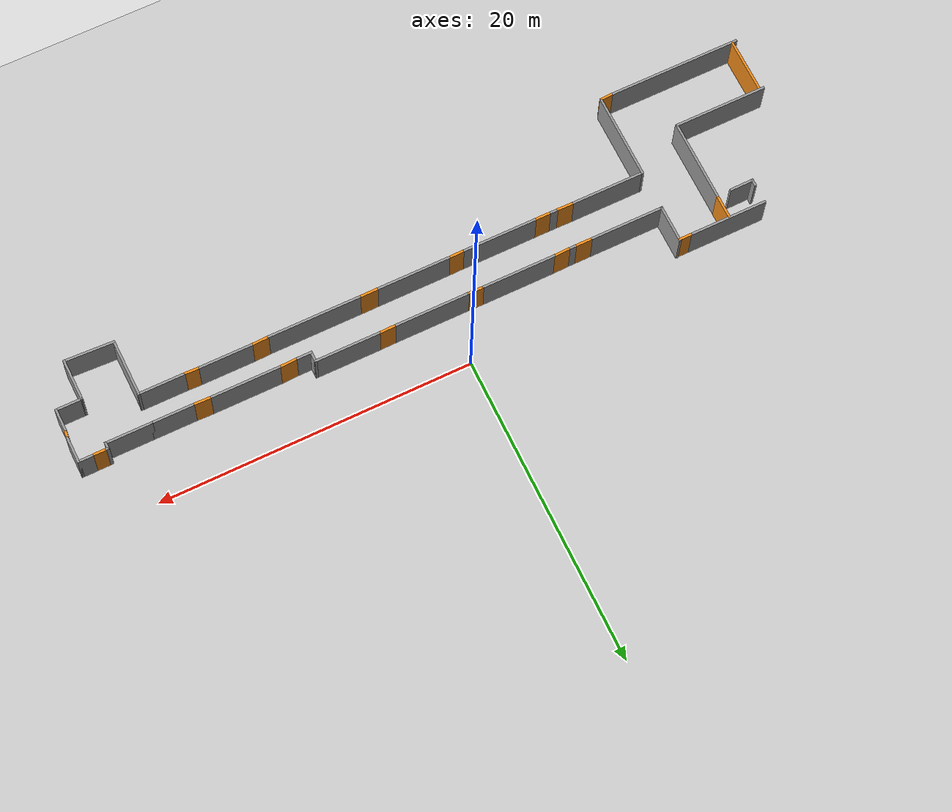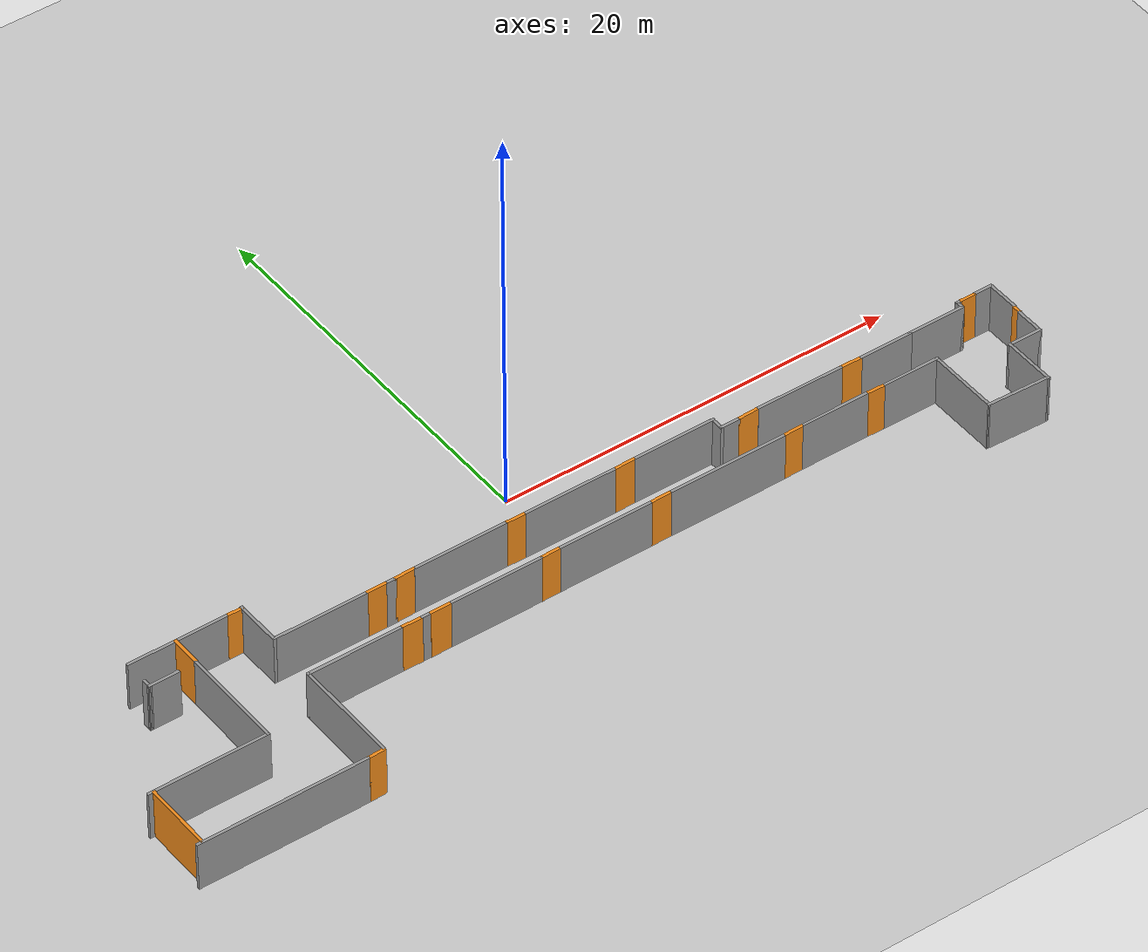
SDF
<sdf version='1.7'>
  <world name='default'>
    <light name='sun' type='directional'>
      <cast_shadows>1</cast_shadows>
      <pose>0 0 10 0 -0 0</pose>
      <diffuse>0.8 0.8 0.8 1</diffuse>
      <specular>0.2 0.2 0.2 1</specular>
      <attenuation>
        <range>1000</range>
        <constant>0.9</constant>
        <linear>0.01</linear>
        <quadratic>0.001</quadratic>
      </attenuation>
      <direction>-0.5 0.1 -0.9</direction>
      <spot>
        <inner_angle>0</inner_angle>
        <outer_angle>0</outer_angle>
        <falloff>0</falloff>
      </spot>
    </light>
    <model name='ground_plane'>
      <static>1</static>
      <link name='link'>
        <collision name='collision'>
          <geometry>
            <plane>
              <normal>0 0 1</normal>
              <size>100 100</size>
            </plane>
          </geometry>
          <surface>
            <friction>
              <ode>
                <mu>100</mu>
                <mu2>50</mu2>
              </ode>
              <torsional>
                <ode/>
              </torsional>
            </friction>
            <contact>
              <ode/>
            </contact>
            <bounce/>
          </surface>
          <max_contacts>10</max_contacts>
        </collision>
        <visual name='visual'>
          <cast_shadows>0</cast_shadows>
          <geometry>
            <plane>
              <normal>0 0 1</normal>
              <size>100 100</size>
            </plane>
          </geometry>
          <material>
            <script>
              <uri>file://media/materials/scripts/gazebo.material</uri>
              <name>Gazebo/Grey</name>
            </script>
          </material>
        </visual>
        <self_collide>0</self_collide>
        <enable_wind>0</enable_wind>
        <kinematic>0</kinematic>
      </link>
    </model>
    <gravity>0 0 -9.8</gravity>
    <magnetic_field>6e-06 2.3e-05 -4.2e-05</magnetic_field>
    <atmosphere type='adiabatic'/>
    <physics type='ode'>
      <max_step_size>0.001</max_step_size>
      <real_time_factor>1</real_time_factor>
      <real_time_update_rate>1000</real_time_update_rate>
    </physics>
    <scene>
      <ambient>0.4 0.4 0.4 1</ambient>
      <background>0.7 0.7 0.7 1</background>
      <shadows>1</shadows>
    </scene>
    <audio>
      <device>default</device>
    </audio>
    <wind/>
    <spherical_coordinates>
      <surface_model>EARTH_WGS84</surface_model>
      <latitude_deg>0</latitude_deg>
      <longitude_deg>0</longitude_deg>
      <elevation>0</elevation>
      <heading_deg>0</heading_deg>
    </spherical_coordinates>

    <include>
      <name>mundo_definitivo_piso2</name>
      <uri>model://mundo_definitivo_piso2</uri>
      <pose>0 0 0 0 0 0</pose>
    </include>

    <gui fullscreen='0'>
      <camera name='user_camera'>
        <pose>0 -14.7 50 0 1.4 1.5708</pose>
        <view_controller>orbit</view_controller>
        <projection_type>perspective</projection_type>
      </camera>
    </gui>
  </world>
</sdf>

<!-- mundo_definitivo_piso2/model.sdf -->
<sdf version='1.7'>
  <model name='mundo_definitivo_piso2'>
    <pose>0.752962 -0.165006 0 0 -0 0</pose>
    <link name='Wall_100'>
      <collision name='Wall_100_Collision'>
        <geometry>
          <box>
            <size>0.5 0.15 2.5</size>
          </box>
        </geometry>
        <pose>0 0 1.25 0 -0 0</pose>
      </collision>
      <visual name='Wall_100_Visual'>
        <pose>0 0 1.25 0 -0 0</pose>
        <geometry>
          <box>
            <size>0.5 0.15 2.5</size>
          </box>
        </geometry>
        <material>
          <script>
            <uri>file://media/materials/scripts/gazebo.material</uri>
            <name>Gazebo/Grey</name>
          </script>
          <ambient>1 1 1 1</ambient>
        </material>
        <meta>
          <layer>0</layer>
        </meta>
      </visual>
      <pose>-8.23448 -5.77581 0 0 -0 0</pose>
    </link>
    <link name='Wall_102'>
      <collision name='Wall_102_Collision'>
        <geometry>
          <box>
            <size>4.75 0.15 2.5</size>
          </box>
        </geometry>
        <pose>0 0 1.25 0 -0 0</pose>
      </collision>
      <visual name='Wall_102_Visual'>
        <pose>0 0 1.25 0 -0 0</pose>
        <geometry>
          <box>
            <size>4.75 0.15 2.5</size>
          </box>
        </geometry>
        <material>
          <script>
            <uri>file://media/materials/scripts/gazebo.material</uri>
            <name>Gazebo/Grey</name>
          </script>
          <ambient>1 1 1 1</ambient>
        </material>
        <meta>
          <layer>0</layer>
        </meta>
      </visual>
      <pose>-11.7864 -3.22073 0 0 -0 3.14159</pose>
    </link>
    <link name='Wall_104'>
      <collision name='Wall_104_Collision'>
        <geometry>
          <box>
            <size>2.46963 0.15 2.5</size>
          </box>
        </geometry>
        <pose>0 0 1.25 0 -0 0</pose>
      </collision>
      <visual name='Wall_104_Visual'>
        <pose>0 0 1.25 0 -0 0</pose>
        <geometry>
          <box>
            <size>2.46963 0.15 2.5</size>
          </box>
        </geometry>
        <material>
          <script>
            <uri>file://media/materials/scripts/gazebo.material</uri>
            <name>Gazebo/Grey</name>
          </script>
          <ambient>1 1 1 1</ambient>
        </material>
        <meta>
          <layer>0</layer>
        </meta>
      </visual>
      <pose>-14.1016 -2.06094 0 0 -0 1.5708</pose>
    </link>
    <link name='Wall_106'>
      <collision name='Wall_106_Collision'>
        <geometry>
          <box>
            <size>0.5 0.15 2.5</size>
          </box>
        </geometry>
        <pose>0 0 1.25 0 -0 0</pose>
      </collision>
      <visual name='Wall_106_Visual'>
        <pose>0 0 1.25 0 -0 0</pose>
        <geometry>
          <box>
            <size>0.5 0.15 2.5</size>
          </box>
        </geometry>
        <material>
          <script>
            <uri>file://media/materials/scripts/gazebo.material</uri>
            <name>Gazebo/Grey</name>
          </script>
          <ambient>1 1 1 1</ambient>
        </material>
        <meta>
          <layer>0</layer>
        </meta>
      </visual>
      <pose>-8.21947 -3.22073 0 0 -0 3.14159</pose>
    </link>
    <link name='Wall_108'>
      <collision name='Wall_108_Collision'>
        <geometry>
          <box>
            <size>4.75 0.15 2.5</size>
          </box>
        </geometry>
        <pose>0 0 1.25 0 -0 0</pose>
      </collision>
      <visual name='Wall_108_Visual'>
        <pose>0 0 1.25 0 -0 0</pose>
        <geometry>
          <box>
            <size>4.75 0.15 2.5</size>
          </box>
        </geometry>
        <material>
          <script>
            <uri>file://media/materials/scripts/gazebo.material</uri>
            <name>Gazebo/Grey</name>
          </script>
          <ambient>1 1 1 1</ambient>
        </material>
        <meta>
          <layer>0</layer>
        </meta>
      </visual>
      <pose>-4.64944 -3.19032 0 0 -0 0</pose>
    </link>
    <link name='Wall_110'>
      <collision name='Wall_110_Collision'>
        <geometry>
          <box>
            <size>4.75 0.15 2.5</size>
          </box>
        </geometry>
        <pose>0 0 1.25 0 -0 0</pose>
      </collision>
      <visual name='Wall_110_Visual'>
        <pose>0 0 1.25 0 -0 0</pose>
        <geometry>
          <box>
            <size>4.75 0.15 2.5</size>
          </box>
        </geometry>
        <material>
          <script>
            <uri>file://media/materials/scripts/gazebo.material</uri>
            <name>Gazebo/Grey</name>
          </script>
          <ambient>1 1 1 1</ambient>
        </material>
        <meta>
          <layer>0</layer>
        </meta>
      </visual>
      <pose>-4.66465 -5.77581 0 0 -0 0</pose>
    </link>
    <link name='Wall_112'>
      <collision name='Wall_112_Collision'>
        <geometry>
          <box>
            <size>4.75 0.15 2.5</size>
          </box>
        </geometry>
        <pose>0 0 1.25 0 -0 0</pose>
      </collision>
      <visual name='Wall_112_Visual'>
        <pose>0 0 1.25 0 -0 0</pose>
        <geometry>
          <box>
            <size>4.75 0.15 2.5</size>
          </box>
        </geometry>
        <material>
          <script>
            <uri>file://media/materials/scripts/gazebo.material</uri>
            <name>Gazebo/Grey</name>
          </script>
          <ambient>1 1 1 1</ambient>
        </material>
        <meta>
          <layer>0</layer>
        </meta>
      </visual>
      <pose>0.99301 -3.20553 0 0 -0 0</pose>
    </link>
    <link name='Wall_114'>
      <collision name='Wall_114_Collision'>
        <geometry>
          <box>
            <size>4.75 0.15 2.5</size>
          </box>
        </geometry>
        <pose>0 0 1.25 0 -0 0</pose>
      </collision>
      <visual name='Wall_114_Visual'>
        <pose>0 0 1.25 0 -0 0</pose>
        <geometry>
          <box>
            <size>4.75 0.15 2.5</size>
          </box>
        </geometry>
        <material>
          <script>
            <uri>file://media/materials/scripts/gazebo.material</uri>
            <name>Gazebo/Grey</name>
          </script>
          <ambient>1 1 1 1</ambient>
        </material>
        <meta>
          <layer>0</layer>
        </meta>
      </visual>
      <pose>0.977802 -5.7606 0 0 -0 0</pose>
    </link>
    <link name='Wall_116'>
      <collision name='Wall_116_Collision'>
        <geometry>
          <box>
            <size>4.25 0.15 2.5</size>
          </box>
        </geometry>
        <pose>0 0 1.25 0 -0 0</pose>
      </collision>
      <visual name='Wall_116_Visual'>
        <pose>0 0 1.25 0 -0 0</pose>
        <geometry>
          <box>
            <size>4.25 0.15 2.5</size>
          </box>
        </geometry>
        <material>
          <script>
            <uri>file://media/materials/scripts/gazebo.material</uri>
            <name>Gazebo/Grey</name>
          </script>
          <ambient>1 1 1 1</ambient>
        </material>
        <meta>
          <layer>0</layer>
        </meta>
      </visual>
      <pose>6.4615 -3.19032 0 0 -0 0</pose>
    </link>
    <link name='Wall_117'>
      <collision name='Wall_117_Collision'>
        <geometry>
          <box>
            <size>0.750193 0.15 2.5</size>
          </box>
        </geometry>
        <pose>0 0 1.25 0 -0 0</pose>
      </collision>
      <visual name='Wall_117_Visual'>
        <pose>0 0 1.25 0 -0 0</pose>
        <geometry>
          <box>
            <size>0.750193 0.15 2.5</size>
          </box>
        </geometry>
        <material>
          <script>
            <uri>file://media/materials/scripts/gazebo.material</uri>
            <name>Gazebo/Grey</name>
          </script>
          <ambient>1 1 1 1</ambient>
        </material>
        <meta>
          <layer>0</layer>
        </meta>
      </visual>
      <pose>8.49629 -3.49032 0 0 -0 -1.5708</pose>
    </link>
    <link name='Wall_118'>
      <collision name='Wall_118_Collision'>
        <geometry>
          <box>
            <size>1 0.15 2.5</size>
          </box>
        </geometry>
        <pose>0 0 1.25 0 -0 0</pose>
      </collision>
      <visual name='Wall_118_Visual'>
        <pose>0 0 1.25 0 -0 0</pose>
        <geometry>
          <box>
            <size>1 0.15 2.5</size>
          </box>
        </geometry>
        <material>
          <script>
            <uri>file://media/materials/scripts/gazebo.material</uri>
            <name>Gazebo/Grey</name>
          </script>
          <ambient>1 1 1 1</ambient>
        </material>
        <meta>
          <layer>0</layer>
        </meta>
      </visual>
      <pose>8.9365 -3.79032 0 0 -0 0</pose>
    </link>
    <link name='Wall_120'>
      <collision name='Wall_120_Collision'>
        <geometry>
          <box>
            <size>4.5 0.15 2.5</size>
          </box>
        </geometry>
        <pose>0 0 1.25 0 -0 0</pose>
      </collision>
      <visual name='Wall_120_Visual'>
        <pose>0 0 1.25 0 -0 0</pose>
        <geometry>
          <box>
            <size>4.5 0.15 2.5</size>
          </box>
        </geometry>
        <material>
          <script>
            <uri>file://media/materials/scripts/gazebo.material</uri>
            <name>Gazebo/Grey</name>
          </script>
          <ambient>1 1 1 1</ambient>
        </material>
        <meta>
          <layer>0</layer>
        </meta>
      </visual>
      <pose>12.7004 -3.75304 0 0 -0 0</pose>
    </link>
    <link name='Wall_124'>
      <collision name='Wall_124_Collision'>
        <geometry>
          <box>
            <size>3 0.15 2.5</size>
          </box>
        </geometry>
        <pose>0 0 1.25 0 -0 0</pose>
      </collision>
      <visual name='Wall_124_Visual'>
        <pose>0 0 1.25 0 -0 0</pose>
        <geometry>
          <box>
            <size>3 0.15 2.5</size>
          </box>
        </geometry>
        <material>
          <script>
            <uri>file://media/materials/scripts/gazebo.material</uri>
            <name>Gazebo/Grey</name>
          </script>
          <ambient>1 1 1 1</ambient>
        </material>
        <meta>
          <layer>0</layer>
        </meta>
      </visual>
      <pose>17.1388 -5.74539 0 0 -0 3.14159</pose>
    </link>
    <link name='Wall_126'>
      <collision name='Wall_126_Collision'>
        <geometry>
          <box>
            <size>3.5 0.15 2.5</size>
          </box>
        </geometry>
        <pose>0 0 1.25 0 -0 0</pose>
      </collision>
      <visual name='Wall_126_Visual'>
        <pose>0 0 1.25 0 -0 0</pose>
        <geometry>
          <box>
            <size>3.5 0.15 2.5</size>
          </box>
        </geometry>
        <material>
          <script>
            <uri>file://media/materials/scripts/gazebo.material</uri>
            <name>Gazebo/Grey</name>
          </script>
          <ambient>1 1 1 1</ambient>
        </material>
        <meta>
          <layer>0</layer>
        </meta>
      </visual>
      <pose>13.0768 -5.72041 0 0 -0 0</pose>
    </link>
    <link name='Wall_128'>
      <collision name='Wall_128_Collision'>
        <geometry>
          <box>
            <size>6 0.15 2.5</size>
          </box>
        </geometry>
        <pose>0 0 1.25 0 -0 0</pose>
      </collision>
      <visual name='Wall_128_Visual'>
        <pose>0 0 1.25 0 -0 0</pose>
        <geometry>
          <box>
            <size>6 0.15 2.5</size>
          </box>
        </geometry>
        <material>
          <script>
            <uri>file://media/materials/scripts/gazebo.material</uri>
            <name>Gazebo/Grey</name>
          </script>
          <ambient>1 1 1 1</ambient>
        </material>
        <meta>
          <layer>0</layer>
        </meta>
      </visual>
      <pose>7.38832 -5.75453 0 0 -0 0</pose>
    </link>
    <link name='Wall_130'>
      <collision name='Wall_130_Collision'>
        <geometry>
          <box>
            <size>3.75 0.15 2.5</size>
          </box>
        </geometry>
        <pose>0 0 1.25 0 -0 0</pose>
      </collision>
      <visual name='Wall_130_Visual'>
        <pose>0 0 1.25 0 -0 0</pose>
        <geometry>
          <box>
            <size>3.75 0.15 2.5</size>
          </box>
        </geometry>
        <material>
          <script>
            <uri>file://media/materials/scripts/gazebo.material</uri>
            <name>Gazebo/Grey</name>
          </script>
          <ambient>1 1 1 1</ambient>
        </material>
        <meta>
          <layer>0</layer>
        </meta>
      </visual>
      <pose>18.5523 -7.54539 0 0 -0 -1.5708</pose>
    </link>
    <link name='Wall_136'>
      <collision name='Wall_136_Collision'>
        <geometry>
          <box>
            <size>2.75 0.15 2.5</size>
          </box>
        </geometry>
        <pose>0 0 1.25 0 -0 0</pose>
      </collision>
      <visual name='Wall_136_Visual'>
        <pose>0 0 1.25 0 -0 0</pose>
        <geometry>
          <box>
            <size>2.75 0.15 2.5</size>
          </box>
        </geometry>
        <material>
          <script>
            <uri>file://media/materials/scripts/gazebo.material</uri>
            <name>Gazebo/Grey</name>
          </script>
          <ambient>1 1 1 1</ambient>
        </material>
        <meta>
          <layer>0</layer>
        </meta>
      </visual>
      <pose>17.3064 -3.77961 0 0 -0 0</pose>
    </link>
    <link name='Wall_138'>
      <collision name='Wall_138_Collision'>
        <geometry>
          <box>
            <size>3 0.15 2.5</size>
          </box>
        </geometry>
        <pose>0 0 1.25 0 -0 0</pose>
      </collision>
      <visual name='Wall_138_Visual'>
        <pose>0 0 1.25 0 -0 0</pose>
        <geometry>
          <box>
            <size>3 0.15 2.5</size>
          </box>
        </geometry>
        <material>
          <script>
            <uri>file://media/materials/scripts/gazebo.material</uri>
            <name>Gazebo/Grey</name>
          </script>
          <ambient>1 1 1 1</ambient>
        </material>
        <meta>
          <layer>0</layer>
        </meta>
      </visual>
      <pose>20.0314 -3.77961 0 0 -0 0</pose>
    </link>
    <link name='Wall_139'>
      <collision name='Wall_139_Collision'>
        <geometry>
          <box>
            <size>0.5 0.15 2.5</size>
          </box>
        </geometry>
        <pose>0 0 1.25 0 -0 0</pose>
      </collision>
      <visual name='Wall_139_Visual'>
        <pose>0 0 1.25 0 -0 0</pose>
        <geometry>
          <box>
            <size>0.5 0.15 2.5</size>
          </box>
        </geometry>
        <material>
          <script>
            <uri>file://media/materials/scripts/gazebo.material</uri>
            <name>Gazebo/Grey</name>
          </script>
          <ambient>1 1 1 1</ambient>
        </material>
        <meta>
          <layer>0</layer>
        </meta>
      </visual>
      <pose>21.4564 -3.60461 0 0 -0 1.5708</pose>
    </link>
    <link name='Wall_140'>
      <collision name='Wall_140_Collision'>
        <geometry>
          <box>
            <size>0.25 0.15 2.5</size>
          </box>
        </geometry>
        <pose>0 0 1.25 0 -0 0</pose>
      </collision>
      <visual name='Wall_140_Visual'>
        <pose>0 0 1.25 0 -0 0</pose>
        <geometry>
          <box>
            <size>0.25 0.15 2.5</size>
          </box>
        </geometry>
        <material>
          <script>
            <uri>file://media/materials/scripts/gazebo.material</uri>
            <name>Gazebo/Grey</name>
          </script>
          <ambient>1 1 1 1</ambient>
        </material>
        <meta>
          <layer>0</layer>
        </meta>
      </visual>
      <pose>21.5064 -3.42961 0 0 -0 0</pose>
    </link>
    <link name='Wall_147'>
      <collision name='Wall_147_Collision'>
        <geometry>
          <box>
            <size>1 0.15 2.5</size>
          </box>
        </geometry>
        <pose>0 0 1.25 0 -0 0</pose>
      </collision>
      <visual name='Wall_147_Visual'>
        <pose>0 0 1.25 0 -0 0</pose>
        <geometry>
          <box>
            <size>1 0.15 2.5</size>
          </box>
        </geometry>
        <material>
          <script>
            <uri>file://media/materials/scripts/gazebo.material</uri>
            <name>Gazebo/Grey</name>
          </script>
          <ambient>1 1 1 1</ambient>
        </material>
        <meta>
          <layer>0</layer>
        </meta>
      </visual>
      <pose>22.8895 -3.41702 0 0 -0 0</pose>
    </link>
    <link name='Wall_149'>
      <collision name='Wall_149_Collision'>
        <geometry>
          <box>
            <size>1.75 0.15 2.5</size>
          </box>
        </geometry>
        <pose>0 0 1.25 0 -0 0</pose>
      </collision>
      <visual name='Wall_149_Visual'>
        <pose>0 0 1.25 0 -0 0</pose>
        <geometry>
          <box>
            <size>1.75 0.15 2.5</size>
          </box>
        </geometry>
        <material>
          <script>
            <uri>file://media/materials/scripts/gazebo.material</uri>
            <name>Gazebo/Grey</name>
          </script>
          <ambient>1 1 1 1</ambient>
        </material>
        <meta>
          <layer>0</layer>
        </meta>
      </visual>
      <pose>23.3145 -4.21702 0 0 -0 -1.5708</pose>
    </link>
    <link name='Wall_151'>
      <collision name='Wall_151_Collision'>
        <geometry>
          <box>
            <size>1.5 0.15 2.5</size>
          </box>
        </geometry>
        <pose>0 0 1.25 0 -0 0</pose>
      </collision>
      <visual name='Wall_151_Visual'>
        <pose>0 0 1.25 0 -0 0</pose>
        <geometry>
          <box>
            <size>1.5 0.15 2.5</size>
          </box>
        </geometry>
        <material>
          <script>
            <uri>file://media/materials/scripts/gazebo.material</uri>
            <name>Gazebo/Grey</name>
          </script>
          <ambient>1 1 1 1</ambient>
        </material>
        <meta>
          <layer>0</layer>
        </meta>
      </visual>
      <pose>23.2317 -6.20321 0 0 -0 -1.5708</pose>
    </link>
    <link name='Wall_152'>
      <collision name='Wall_152_Collision'>
        <geometry>
          <box>
            <size>1.75 0.15 2.5</size>
          </box>
        </geometry>
        <pose>0 0 1.25 0 -0 0</pose>
      </collision>
      <visual name='Wall_152_Visual'>
        <pose>0 0 1.25 0 -0 0</pose>
        <geometry>
          <box>
            <size>1.75 0.15 2.5</size>
          </box>
        </geometry>
        <material>
          <script>
            <uri>file://media/materials/scripts/gazebo.material</uri>
            <name>Gazebo/Grey</name>
          </script>
          <ambient>1 1 1 1</ambient>
        </material>
        <meta>
          <layer>0</layer>
        </meta>
      </visual>
      <pose>22.4317 -6.87821 0 0 -0 3.14159</pose>
    </link>
    <link name='Wall_153'>
      <collision name='Wall_153_Collision'>
        <geometry>
          <box>
            <size>2.75 0.15 2.5</size>
          </box>
        </geometry>
        <pose>0 0 1.25 0 -0 0</pose>
      </collision>
      <visual name='Wall_153_Visual'>
        <pose>0 0 1.25 0 -0 0</pose>
        <geometry>
          <box>
            <size>2.75 0.15 2.5</size>
          </box>
        </geometry>
        <material>
          <script>
            <uri>file://media/materials/scripts/gazebo.material</uri>
            <name>Gazebo/Grey</name>
          </script>
          <ambient>1 1 1 1</ambient>
        </material>
        <meta>
          <layer>0</layer>
        </meta>
      </visual>
      <pose>21.6317 -8.17821 0 0 -0 -1.5708</pose>
    </link>
    <link name='Wall_154'>
      <collision name='Wall_154_Collision'>
        <geometry>
          <box>
            <size>3.23226 0.15 2.5</size>
          </box>
        </geometry>
        <pose>0 0 1.25 0 -0 0</pose>
      </collision>
      <visual name='Wall_154_Visual'>
        <pose>0 0 1.25 0 -0 0</pose>
        <geometry>
          <box>
            <size>3.23226 0.15 2.5</size>
          </box>
        </geometry>
        <material>
          <script>
            <uri>file://media/materials/scripts/gazebo.material</uri>
            <name>Gazebo/Grey</name>
          </script>
          <ambient>1 1 1 1</ambient>
        </material>
        <meta>
          <layer>0</layer>
        </meta>
      </visual>
      <pose>20.092 -9.4118 0 0 -0 3.09849</pose>
    </link>
    <link name='Wall_81'>
      <collision name='Wall_81_Collision'>
        <geometry>
          <box>
            <size>8.5 0.15 2.5</size>
          </box>
        </geometry>
        <pose>0 0 1.25 0 -0 0</pose>
      </collision>
      <visual name='Wall_81_Visual'>
        <pose>0 0 1.25 0 -0 0</pose>
        <geometry>
          <box>
            <size>8.5 0.15 2.5</size>
          </box>
        </geometry>
        <material>
          <script>
            <uri>file://media/materials/scripts/gazebo.material</uri>
            <name>Gazebo/Grey</name>
          </script>
          <ambient>1 1 1 1</ambient>
        </material>
        <meta>
          <layer>0</layer>
        </meta>
      </visual>
      <pose>-19.1395 -11.2201 0 0 -0 0</pose>
    </link>
    <link name='Wall_83'>
      <collision name='Wall_83_Collision'>
        <geometry>
          <box>
            <size>5.5 0.15 2.5</size>
          </box>
        </geometry>
        <pose>0 0 1.25 0 -0 0</pose>
      </collision>
      <visual name='Wall_83_Visual'>
        <pose>0 0 1.25 0 -0 0</pose>
        <geometry>
          <box>
            <size>5.5 0.15 2.5</size>
          </box>
        </geometry>
        <material>
          <script>
            <uri>file://media/materials/scripts/gazebo.material</uri>
            <name>Gazebo/Grey</name>
          </script>
          <ambient>1 1 1 1</ambient>
        </material>
        <meta>
          <layer>0</layer>
        </meta>
      </visual>
      <pose>-14.128 -8.43908 0 0 -0 1.5708</pose>
    </link>
    <link name='Wall_85'>
      <collision name='Wall_85_Collision'>
        <geometry>
          <box>
            <size>5.34 0.15 2.5</size>
          </box>
        </geometry>
        <pose>0 0 1.25 0 -0 0</pose>
      </collision>
      <visual name='Wall_85_Visual'>
        <pose>0 0 1.25 0 -0 0</pose>
        <geometry>
          <box>
            <size>5.34 0.15 2.5</size>
          </box>
        </geometry>
        <material>
          <script>
            <uri>file://media/materials/scripts/gazebo.material</uri>
            <name>Gazebo/Grey</name>
          </script>
          <ambient>1 1 1 1</ambient>
        </material>
        <meta>
          <layer>0</layer>
        </meta>
      </visual>
      <pose>-17.4435 -5.07687 0 0 -0 1.5708</pose>
    </link>
    <link name='Wall_88'>
      <collision name='Wall_88_Collision'>
        <geometry>
          <box>
            <size>6 0.15 2.5</size>
          </box>
        </geometry>
        <pose>0 0 1.25 0 -0 0</pose>
      </collision>
      <visual name='Wall_88_Visual'>
        <pose>0 0 1.25 0 -0 0</pose>
        <geometry>
          <box>
            <size>6 0.15 2.5</size>
          </box>
        </geometry>
        <material>
          <script>
            <uri>file://media/materials/scripts/gazebo.material</uri>
            <name>Gazebo/Grey</name>
          </script>
          <ambient>1 1 1 1</ambient>
        </material>
        <meta>
          <layer>0</layer>
        </meta>
      </visual>
      <pose>-20.3685 -7.67187 0 0 -0 3.14159</pose>
    </link>
    <link name='Barrera_Escalera'>
      <collision name='Barrera_Escalera_Collision'>
        <geometry>
          <box>
            <size>3.56 0.15 2.5</size>
          </box>
        </geometry>
        <pose>0 0 1.25 0 -0 0</pose>
      </collision>
      <visual name='Barrera_Escalera_Visual'>
        <pose>0 0 1.25 0 -0 0</pose>
        <geometry>
          <box>
            <size>3.56 0.15 2.5</size>
          </box>
        </geometry>
        <material>
          <script>
            <uri>file://media/materials/scripts/gazebo.material</uri>
            <name>Gazebo/Orange</name>
          </script>
          <ambient>1 1 1 1</ambient>
        </material>
        <meta>
          <layer>0</layer>
        </meta>
      </visual>
      <pose>-23.07 -9.446 0 0 -0 1.5708</pose>
    </link>
    <link name='Wall_90'>
      <collision name='Wall_90_Collision'>
        <geometry>
          <box>
            <size>1.57612 0.15 2.5</size>
          </box>
        </geometry>
        <pose>0 0 1.25 0 -0 0</pose>
      </collision>
      <visual name='Wall_90_Visual'>
        <pose>0 0 1.25 0 -0 0</pose>
        <geometry>
          <box>
            <size>1.57612 0.15 2.5</size>
          </box>
        </geometry>
        <material>
          <script>
            <uri>file://media/materials/scripts/gazebo.material</uri>
            <name>Gazebo/Grey</name>
          </script>
          <ambient>1 1 1 1</ambient>
        </material>
        <meta>
          <layer>0</layer>
        </meta>
      </visual>
      <pose>-19.0841 -2.49836 0 0 -0 -3.13088</pose>
    </link>
    <link name='Wall_92'>
      <collision name='Wall_92_Collision'>
        <geometry>
          <box>
            <size>5 0.15 2.5</size>
          </box>
        </geometry>
        <pose>0 0 1.25 0 -0 0</pose>
      </collision>
      <visual name='Wall_92_Visual'>
        <pose>0 0 1.25 0 -0 0</pose>
        <geometry>
          <box>
            <size>5 0.15 2.5</size>
          </box>
        </geometry>
        <material>
          <script>
            <uri>file://media/materials/scripts/gazebo.material</uri>
            <name>Gazebo/Grey</name>
          </script>
          <ambient>1 1 1 1</ambient>
        </material>
        <meta>
          <layer>0</layer>
        </meta>
      </visual>
      <pose>-17.359 -0.939423 0 0 -0 3.14159</pose>
    </link>
    <link name='Wall_96'>
      <collision name='Wall_96_Collision'>
        <geometry>
          <box>
            <size>0.5 0.15 2.5</size>
          </box>
        </geometry>
        <pose>0 0 1.25 0 -0 0</pose>
      </collision>
      <visual name='Wall_96_Visual'>
        <pose>0 0 1.25 0 -0 0</pose>
        <geometry>
          <box>
            <size>0.5 0.15 2.5</size>
          </box>
        </geometry>
        <material>
          <script>
            <uri>file://media/materials/scripts/gazebo.material</uri>
            <name>Gazebo/Grey</name>
          </script>
          <ambient>1 1 1 1</ambient>
        </material>
        <meta>
          <layer>0</layer>
        </meta>
      </visual>
      <pose>-19.797 -2.33099 0 0 -0 1.5708</pose>
    </link>
    <link name='Wall_98'>
      <collision name='Wall_98_Collision'>
        <geometry>
          <box>
            <size>4.75 0.15 2.5</size>
          </box>
        </geometry>
        <pose>0 0 1.25 0 -0 0</pose>
      </collision>
      <visual name='Wall_98_Visual'>
        <pose>0 0 1.25 0 -0 0</pose>
        <geometry>
          <box>
            <size>4.75 0.15 2.5</size>
          </box>
        </geometry>
        <material>
          <script>
            <uri>file://media/materials/scripts/gazebo.material</uri>
            <name>Gazebo/Grey</name>
          </script>
          <ambient>1 1 1 1</ambient>
        </material>
        <meta>
          <layer>0</layer>
        </meta>
      </visual>
      <pose>-11.828 -5.76408 0 0 -0 0</pose>
    </link>
    <!-- PANELES SINTETICOS DEL PISO 2                    anadidos 2026-08-24 -->
    <!-- QUE SON. Cierres que NO existen en el edificio real. Tapan los vanos  -->
    <!-- laterales del piso 2 y los extremos abiertos del perimetro. Van en    -->
    <!-- Gazebo/Orange por la misma convencion que Barrera_Escalera: naranja   -->
    <!-- significa 'esto no es geometria real del edificio'.                   -->
    <!-- POR QUE HACEN FALTA. Sin ellos el relleno de generar_mapa_desde_mundo -->
    <!-- se escapa por cada puerta y declara libre medio plano. El 23-ago eso  -->
    <!-- se tapo con cinco opciones region, que son un recorte a mano del      -->
    <!-- resultado: el mapa salia bien pero el mundo seguia abierto, y todo lo -->
    <!-- que no fuera ese recorte -Gazebo, el LiDAR, un relleno desde otra     -->
    <!-- semilla- seguia viendo los agujeros. Mismo defecto que el piso 1.     -->
    <!-- POR QUE PARED Y NO HUECO. Nav2 infla los obstaculos LETHAL pero NO    -->
    <!-- las celdas NO_INFORMATION. Un vano dejado como desconocido no da      -->
    <!-- ningun colchon; una pared da los 0,55 m de inflation_radius. Ademas   -->
    <!-- el LiDAR ve el panel, asi que AMCL no se degrada en cada puerta.      -->
    <!-- COMO SE ELIGIERON. Analiticamente, no a ojo, con                      -->
    <!-- herramientas/buscar_vanos.py: empareja cada punta suelta de pared con -->
    <!-- la que tiene enfrente y conserva solo los huecos COLINEALES -los que  -->
    <!-- prolongan el eje de la pared que los abre, frente a las secciones     -->
    <!-- transversales de pasillo, que son perpendiculares- y con linea de     -->
    <!-- vision libre. Salieron 27. Cuales dejar abiertos lo decidieron las    -->
    <!-- cinco region del 23-ago, que ya declaraban la red navegable: si los   -->
    <!-- dos lados del hueco caen dentro de la red, es paso. El comando exacto -->
    <!-- esta en Documentos/GUIA_EJECUCION.md.                                 -->
    <!-- LOS 4 PASOS QUE NO SE TAPAN, y por que:                               -->
    <!--   (-14.13, -4.46) 2.47 m  boca oeste del pasillo largo. Sellarlo      -->
    <!--                           incomunica el ala oeste, donde spawnea      -->
    <!--                           robot2 y esta piso2_escalera.               -->
    <!--   (  8.50, -4.81) 1.89 m  empalme pasillo largo / pasillo este.       -->
    <!--   ( 18.55, -4.73) 1.89 m  seccion interna del pasillo este.           -->
    <!--   ( 21.55, -5.33) 2.95 m  seccion interna del pasillo este.           -->
    <!-- CRITERIO DE CIERRE. Regenerar el mapa SIN pasar ninguna opcion region:-->
    <!-- si el mundo esta de verdad sellado, el relleno se contiene solo.      -->
    <!-- vano de 1.467 m entre Wall_85 y Wall_92 -->
    <link name='Limite_p2_03'>
      <collision name='Limite_p2_03_Collision'>
        <geometry>
          <box>
            <size>1.56745 0.15 2.5</size>
          </box>
        </geometry>
        <pose>0 0 1.25 0 -0 0</pose>
      </collision>
      <visual name='Limite_p2_03_Visual'>
        <pose>0 0 1.25 0 -0 0</pose>
        <geometry>
          <box>
            <size>1.56745 0.15 2.5</size>
          </box>
        </geometry>
        <material>
          <script>
            <uri>file://media/materials/scripts/gazebo.material</uri>
            <name>Gazebo/Orange</name>
          </script>
          <ambient>1 0.5 0 1</ambient>
        </material>
        <meta>
          <layer>0</layer>
        </meta>
      </visual>
      <pose>-17.44000 -1.67500 0 0 -0 1.57080</pose>
    </link>
    <!-- vano de 0.762 m entre Wall_81 y Wall_83 -->
    <link name='Limite_p2_04'>
      <collision name='Limite_p2_04_Collision'>
        <geometry>
          <box>
            <size>0.86214 0.15 2.5</size>
          </box>
        </geometry>
        <pose>0 0 1.25 0 -0 0</pose>
      </collision>
      <visual name='Limite_p2_04_Visual'>
        <pose>0 0 1.25 0 -0 0</pose>
        <geometry>
          <box>
            <size>0.86214 0.15 2.5</size>
          </box>
        </geometry>
        <material>
          <script>
            <uri>file://media/materials/scripts/gazebo.material</uri>
            <name>Gazebo/Orange</name>
          </script>
          <ambient>1 0.5 0 1</ambient>
        </material>
        <meta>
          <layer>0</layer>
        </meta>
      </visual>
      <pose>-14.51000 -11.20500 0 0 -0 0.03945</pose>
    </link>
    <!-- vano de 0.757 m entre Wall_92 y Wall_104 -->
    <link name='Limite_p2_05'>
      <collision name='Limite_p2_05_Collision'>
        <geometry>
          <box>
            <size>0.85740 0.15 2.5</size>
          </box>
        </geometry>
        <pose>0 0 1.25 0 -0 0</pose>
      </collision>
      <visual name='Limite_p2_05_Visual'>
        <pose>0 0 1.25 0 -0 0</pose>
        <geometry>
          <box>
            <size>0.85740 0.15 2.5</size>
          </box>
        </geometry>
        <material>
          <script>
            <uri>file://media/materials/scripts/gazebo.material</uri>
            <name>Gazebo/Orange</name>
          </script>
          <ambient>1 0.5 0 1</ambient>
        </material>
        <meta>
          <layer>0</layer>
        </meta>
      </visual>
      <pose>-14.48000 -0.94000 0 0 -0 0.00000</pose>
    </link>
    <!-- vano de 0.969 m entre Wall_100 y Wall_98 -->
    <link name='Limite_p2_06'>
      <collision name='Limite_p2_06_Collision'>
        <geometry>
          <box>
            <size>1.06859 0.15 2.5</size>
          </box>
        </geometry>
        <pose>0 0 1.25 0 -0 0</pose>
      </collision>
      <visual name='Limite_p2_06_Visual'>
        <pose>0 0 1.25 0 -0 0</pose>
        <geometry>
          <box>
            <size>1.06859 0.15 2.5</size>
          </box>
        </geometry>
        <material>
          <script>
            <uri>file://media/materials/scripts/gazebo.material</uri>
            <name>Gazebo/Orange</name>
          </script>
          <ambient>1 0.5 0 1</ambient>
        </material>
        <meta>
          <layer>0</layer>
        </meta>
      </visual>
      <pose>-8.96500 -5.77000 0 0 -0 -0.02062</pose>
    </link>
    <!-- vano de 0.942 m entre Wall_102 y Wall_106 -->
    <link name='Limite_p2_07'>
      <collision name='Limite_p2_07_Collision'>
        <geometry>
          <box>
            <size>1.04193 0.15 2.5</size>
          </box>
        </geometry>
        <pose>0 0 1.25 0 -0 0</pose>
      </collision>
      <visual name='Limite_p2_07_Visual'>
        <pose>0 0 1.25 0 -0 0</pose>
        <geometry>
          <box>
            <size>1.04193 0.15 2.5</size>
          </box>
        </geometry>
        <material>
          <script>
            <uri>file://media/materials/scripts/gazebo.material</uri>
            <name>Gazebo/Orange</name>
          </script>
          <ambient>1 0.5 0 1</ambient>
        </material>
        <meta>
          <layer>0</layer>
        </meta>
      </visual>
      <pose>-8.94000 -3.22000 0 0 -0 0.00000</pose>
    </link>
    <!-- vano de 0.945 m entre Wall_100 y Wall_110 -->
    <link name='Limite_p2_08'>
      <collision name='Limite_p2_08_Collision'>
        <geometry>
          <box>
            <size>1.04483 0.15 2.5</size>
          </box>
        </geometry>
        <pose>0 0 1.25 0 -0 0</pose>
      </collision>
      <visual name='Limite_p2_08_Visual'>
        <pose>0 0 1.25 0 -0 0</pose>
        <geometry>
          <box>
            <size>1.04483 0.15 2.5</size>
          </box>
        </geometry>
        <material>
          <script>
            <uri>file://media/materials/scripts/gazebo.material</uri>
            <name>Gazebo/Orange</name>
          </script>
          <ambient>1 0.5 0 1</ambient>
        </material>
        <meta>
          <layer>0</layer>
        </meta>
      </visual>
      <pose>-7.51000 -5.78000 0 0 -0 0.00000</pose>
    </link>
    <!-- vano de 0.946 m entre Wall_106 y Wall_108 -->
    <link name='Limite_p2_09'>
      <collision name='Limite_p2_09_Collision'>
        <geometry>
          <box>
            <size>1.04552 0.15 2.5</size>
          </box>
        </geometry>
        <pose>0 0 1.25 0 -0 0</pose>
      </collision>
      <visual name='Limite_p2_09_Visual'>
        <pose>0 0 1.25 0 -0 0</pose>
        <geometry>
          <box>
            <size>1.04552 0.15 2.5</size>
          </box>
        </geometry>
        <material>
          <script>
            <uri>file://media/materials/scripts/gazebo.material</uri>
            <name>Gazebo/Orange</name>
          </script>
          <ambient>1 0.5 0 1</ambient>
        </material>
        <meta>
          <layer>0</layer>
        </meta>
      </visual>
      <pose>-7.49500 -3.20500 0 0 -0 0.03157</pose>
    </link>
    <!-- vano de 0.893 m entre Wall_110 y Wall_114 -->
    <link name='Limite_p2_10'>
      <collision name='Limite_p2_10_Collision'>
        <geometry>
          <box>
            <size>0.99258 0.15 2.5</size>
          </box>
        </geometry>
        <pose>0 0 1.25 0 -0 0</pose>
      </collision>
      <visual name='Limite_p2_10_Visual'>
        <pose>0 0 1.25 0 -0 0</pose>
        <geometry>
          <box>
            <size>0.99258 0.15 2.5</size>
          </box>
        </geometry>
        <material>
          <script>
            <uri>file://media/materials/scripts/gazebo.material</uri>
            <name>Gazebo/Orange</name>
          </script>
          <ambient>1 0.5 0 1</ambient>
        </material>
        <meta>
          <layer>0</layer>
        </meta>
      </visual>
      <pose>-1.84500 -5.77000 0 0 -0 0.02247</pose>
    </link>
    <!-- vano de 0.893 m entre Wall_108 y Wall_112 -->
    <link name='Limite_p2_11'>
      <collision name='Limite_p2_11_Collision'>
        <geometry>
          <box>
            <size>0.99258 0.15 2.5</size>
          </box>
        </geometry>
        <pose>0 0 1.25 0 -0 0</pose>
      </collision>
      <visual name='Limite_p2_11_Visual'>
        <pose>0 0 1.25 0 -0 0</pose>
        <geometry>
          <box>
            <size>0.99258 0.15 2.5</size>
          </box>
        </geometry>
        <material>
          <script>
            <uri>file://media/materials/scripts/gazebo.material</uri>
            <name>Gazebo/Orange</name>
          </script>
          <ambient>1 0.5 0 1</ambient>
        </material>
        <meta>
          <layer>0</layer>
        </meta>
      </visual>
      <pose>-1.82500 -3.20000 0 0 -0 -0.02247</pose>
    </link>
    <!-- vano de 0.969 m entre Wall_112 y Wall_116 -->
    <link name='Limite_p2_12'>
      <collision name='Limite_p2_12_Collision'>
        <geometry>
          <box>
            <size>1.06861 0.15 2.5</size>
          </box>
        </geometry>
        <pose>0 0 1.25 0 -0 0</pose>
      </collision>
      <visual name='Limite_p2_12_Visual'>
        <pose>0 0 1.25 0 -0 0</pose>
        <geometry>
          <box>
            <size>1.06861 0.15 2.5</size>
          </box>
        </geometry>
        <material>
          <script>
            <uri>file://media/materials/scripts/gazebo.material</uri>
            <name>Gazebo/Orange</name>
          </script>
          <ambient>1 0.5 0 1</ambient>
        </material>
        <meta>
          <layer>0</layer>
        </meta>
      </visual>
      <pose>3.85500 -3.20000 0 0 -0 0.02062</pose>
    </link>
    <!-- vano de 1.036 m entre Wall_114 y Wall_128 -->
    <link name='Limite_p2_13'>
      <collision name='Limite_p2_13_Collision'>
        <geometry>
          <box>
            <size>1.13554 0.15 2.5</size>
          </box>
        </geometry>
        <pose>0 0 1.25 0 -0 0</pose>
      </collision>
      <visual name='Limite_p2_13_Visual'>
        <pose>0 0 1.25 0 -0 0</pose>
        <geometry>
          <box>
            <size>1.13554 0.15 2.5</size>
          </box>
        </geometry>
        <material>
          <script>
            <uri>file://media/materials/scripts/gazebo.material</uri>
            <name>Gazebo/Orange</name>
          </script>
          <ambient>1 0.5 0 1</ambient>
        </material>
        <meta>
          <layer>0</layer>
        </meta>
      </visual>
      <pose>3.87000 -5.75500 0 0 -0 0.00962</pose>
    </link>
    <!-- vano de 1.015 m entre Wall_118 y Wall_120 -->
    <link name='Limite_p2_15'>
      <collision name='Limite_p2_15_Collision'>
        <geometry>
          <box>
            <size>1.11459 0.15 2.5</size>
          </box>
        </geometry>
        <pose>0 0 1.25 0 -0 0</pose>
      </collision>
      <visual name='Limite_p2_15_Visual'>
        <pose>0 0 1.25 0 -0 0</pose>
        <geometry>
          <box>
            <size>1.11459 0.15 2.5</size>
          </box>
        </geometry>
        <material>
          <script>
            <uri>file://media/materials/scripts/gazebo.material</uri>
            <name>Gazebo/Orange</name>
          </script>
          <ambient>1 0.5 0 1</ambient>
        </material>
        <meta>
          <layer>0</layer>
        </meta>
      </visual>
      <pose>9.94500 -3.77000 0 0 -0 0.03958</pose>
    </link>
    <!-- vano de 0.939 m entre Wall_126 y Wall_128 -->
    <link name='Limite_p2_16'>
      <collision name='Limite_p2_16_Collision'>
        <geometry>
          <box>
            <size>1.03910 0.15 2.5</size>
          </box>
        </geometry>
        <pose>0 0 1.25 0 -0 0</pose>
      </collision>
      <visual name='Limite_p2_16_Visual'>
        <pose>0 0 1.25 0 -0 0</pose>
        <geometry>
          <box>
            <size>1.03910 0.15 2.5</size>
          </box>
        </geometry>
        <material>
          <script>
            <uri>file://media/materials/scripts/gazebo.material</uri>
            <name>Gazebo/Orange</name>
          </script>
          <ambient>1 0.5 0 1</ambient>
        </material>
        <meta>
          <layer>0</layer>
        </meta>
      </visual>
      <pose>10.86000 -5.73500 0 0 -0 0.03190</pose>
    </link>
    <!-- vano de 0.812 m entre Wall_124 y Wall_126 -->
    <link name='Limite_p2_17'>
      <collision name='Limite_p2_17_Collision'>
        <geometry>
          <box>
            <size>0.91238 0.15 2.5</size>
          </box>
        </geometry>
        <pose>0 0 1.25 0 -0 0</pose>
      </collision>
      <visual name='Limite_p2_17_Visual'>
        <pose>0 0 1.25 0 -0 0</pose>
        <geometry>
          <box>
            <size>0.91238 0.15 2.5</size>
          </box>
        </geometry>
        <material>
          <script>
            <uri>file://media/materials/scripts/gazebo.material</uri>
            <name>Gazebo/Orange</name>
          </script>
          <ambient>1 0.5 0 1</ambient>
        </material>
        <meta>
          <layer>0</layer>
        </meta>
      </visual>
      <pose>15.23500 -5.73500 0 0 -0 -0.03702</pose>
    </link>
    <!-- vano de 0.981 m entre Wall_120 y Wall_136 -->
    <link name='Limite_p2_18'>
      <collision name='Limite_p2_18_Collision'>
        <geometry>
          <box>
            <size>1.08136 0.15 2.5</size>
          </box>
        </geometry>
        <pose>0 0 1.25 0 -0 0</pose>
      </collision>
      <visual name='Limite_p2_18_Visual'>
        <pose>0 0 1.25 0 -0 0</pose>
        <geometry>
          <box>
            <size>1.08136 0.15 2.5</size>
          </box>
        </geometry>
        <material>
          <script>
            <uri>file://media/materials/scripts/gazebo.material</uri>
            <name>Gazebo/Orange</name>
          </script>
          <ambient>1 0.5 0 1</ambient>
        </material>
        <meta>
          <layer>0</layer>
        </meta>
      </visual>
      <pose>15.44000 -3.76500 0 0 -0 -0.03060</pose>
    </link>
    <!-- vano de 1.783 m entre Wall_138 y Wall_149 -->
    <link name='Limite_p2_20'>
      <collision name='Limite_p2_20_Collision'>
        <geometry>
          <box>
            <size>0.85 0.15 2.5</size>
          </box>
        </geometry>
        <pose>0 0 1.25 0 -0 0</pose>
      </collision>
      <visual name='Limite_p2_20_Visual'>
        <pose>0 0 1.25 0 -0 0</pose>
        <geometry>
          <box>
            <size>0.85 0.15 2.5</size>
          </box>
        </geometry>
        <material>
          <script>
            <uri>file://media/materials/scripts/gazebo.material</uri>
            <name>Gazebo/Orange</name>
          </script>
          <ambient>1 0.5 0 1</ambient>
        </material>
        <meta>
          <layer>0</layer>
        </meta>
      </visual>
      <pose>22.01000 -3.42500 0 0 -0 0</pose>
    </link>
    <!-- vano de 2.036 m entre Wall_151 y Wall_147 -->
    <link name='Limite_p2_21'>
      <collision name='Limite_p2_21_Collision'>
        <geometry>
          <box>
            <size>0.45 0.15 2.5</size>
          </box>
        </geometry>
        <pose>0 0 1.25 0 -0 0</pose>
      </collision>
      <visual name='Limite_p2_21_Visual'>
        <pose>0 0 1.25 0 -0 0</pose>
        <geometry>
          <box>
            <size>0.45 0.15 2.5</size>
          </box>
        </geometry>
        <material>
          <script>
            <uri>file://media/materials/scripts/gazebo.material</uri>
            <name>Gazebo/Orange</name>
          </script>
          <ambient>1 0.5 0 1</ambient>
        </material>
        <meta>
          <layer>0</layer>
        </meta>
      </visual>
      <pose>23.27000 -5.27250 0 0 -0 1.57080</pose>
    </link>
    <static>1</static>
  </model>
</sdf>
